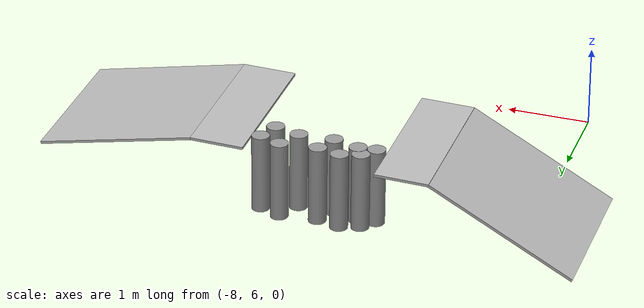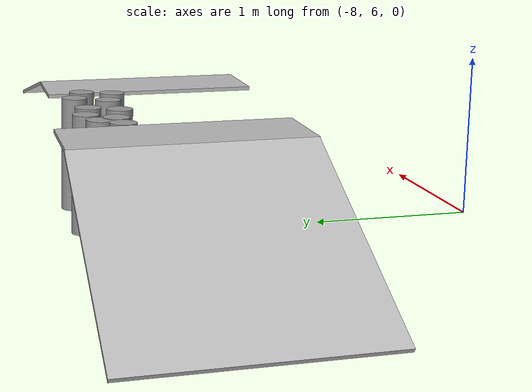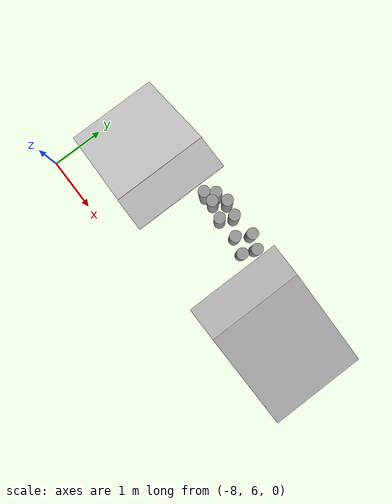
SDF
<sdf version="1.7">
 <world name="default">
  <model name="ramped_stepping_stone_clone_1_clone_clone_2">
   <static>1</static>
   <pose>-4.0201 7.30273 0.204894 0 -0.017033 0</pose>
   <link name="link">
    <collision name="collision"><geometry><box><size>0.666252 1.89779 0.033476</size></box></geometry></collision>
    <visual name="visual"><geometry><box><size>0.666252 1.89779 0.033476</size></box></geometry></visual>
   </link>
  </model>
  <model name="ramped_stepping_stone_clone_1_clone_clone_2_clone">
   <static>1</static>
   <pose>-6.3707 7.45436 0.234508 0 -0.017033 0</pose>
   <link name="link">
    <collision name="collision"><geometry><box><size>0.666252 1.89779 0.033476</size></box></geometry></collision>
    <visual name="visual"><geometry><box><size>0.666252 1.89779 0.033476</size></box></geometry></visual>
   </link>
  </model>
  <model name="ramped_stepping_stone_clone_3">
   <static>1</static>
   <pose>-2.71446 7.30395 0 0 0.212574 0</pose>
   <link name="link">
    <collision name="collision"><geometry><box><size>1.99786 1.89779 0.033476</size></box></geometry></collision>
    <visual name="visual"><geometry><box><size>1.99786 1.89779 0.033476</size></box></geometry></visual>
   </link>
  </model>
  <model name="round_step_clone">
   <link name="link">
    <inertial>
     <mass>0.0497635</mass>
     <inertia>
      <ixx>0.00430173</ixx>
      <ixy>0</ixy>
      <ixz>0</ixz>
      <iyy>0.00430173</iyy>
      <iyz>0</iyz>
      <izz>0.00030955</izz>
     </inertia>
    </inertial>
    <pose>0.001965 -0.009653 -0.499784 1.55252 -0 0</pose>
    <visual name="visual">
     <geometry><cylinder><radius>0.111539</radius><length>1</length></cylinder></geometry>
     <material>
      <script><name>Gazebo/Grey</name><uri>file://media/materials/scripts/gazebo.material</uri></script>
      <shader type="pixel"/>
     </material>
    </visual>
    <collision name="collision">
     <geometry><cylinder><radius>0.111539</radius><length>1</length></cylinder></geometry>
     <surface>
      <friction>
       <ode><mu>1</mu><mu2>1</mu2><fdir1>0 0 0</fdir1><slip1>0</slip1><slip2>0</slip2></ode>
       <torsional>
        <coefficient>1</coefficient>
        <patch_radius>0</patch_radius>
        <surface_radius>0</surface_radius>
        <use_patch_radius>1</use_patch_radius>
        <ode><slip>0</slip></ode>
       </torsional>
      </friction>
      <bounce><restitution_coefficient>0</restitution_coefficient><threshold>1e+06</threshold></bounce>
      <contact>
       <collide_without_contact>0</collide_without_contact>
       <collide_without_contact_bitmask>1</collide_without_contact_bitmask>
       <collide_bitmask>1</collide_bitmask>
       <ode>
        <soft_cfm>0</soft_cfm>
        <soft_erp>0.2</soft_erp>
        <kp>1e+13</kp>
        <kd>1</kd>
        <max_vel>0.01</max_vel>
        <min_depth>0</min_depth>
       </ode>
       <bullet>
        <split_impulse>1</split_impulse>
        <split_impulse_penetration_threshold>-0.01</split_impulse_penetration_threshold>
        <soft_cfm>0</soft_cfm>
        <soft_erp>0.2</soft_erp>
        <kp>1e+13</kp>
        <kd>1</kd>
       </bullet>
      </contact>
     </surface>
    </collision>
   </link>
   <static>1</static>
   <pose>-4.57955 7.21951 -0.259906 1.61465 -0 0</pose>
  </model>
  <model name="round_step_clone_clone">
   <link name="link">
    <inertial>
     <mass>0.0497635</mass>
     <inertia>
      <ixx>0.00430173</ixx>
      <ixy>0</ixy>
      <ixz>0</ixz>
      <iyy>0.00430173</iyy>
      <iyz>0</iyz>
      <izz>0.00030955</izz>
     </inertia>
    </inertial>
    <pose>0.001965 -0.009653 -0.499784 1.55252 -0 0</pose>
    <visual name="visual">
     <geometry><cylinder><radius>0.111539</radius><length>1</length></cylinder></geometry>
     <material>
      <script><name>Gazebo/Grey</name><uri>file://media/materials/scripts/gazebo.material</uri></script>
      <shader type="pixel"/>
     </material>
    </visual>
    <collision name="collision">
     <geometry><cylinder><radius>0.111539</radius><length>1</length></cylinder></geometry>
     <surface>
      <friction>
       <ode><mu>1</mu><mu2>1</mu2><fdir1>0 0 0</fdir1><slip1>0</slip1><slip2>0</slip2></ode>
       <torsional>
        <coefficient>1</coefficient>
        <patch_radius>0</patch_radius>
        <surface_radius>0</surface_radius>
        <use_patch_radius>1</use_patch_radius>
        <ode><slip>0</slip></ode>
       </torsional>
      </friction>
      <bounce><restitution_coefficient>0</restitution_coefficient><threshold>1e+06</threshold></bounce>
      <contact>
       <collide_without_contact>0</collide_without_contact>
       <collide_without_contact_bitmask>1</collide_without_contact_bitmask>
       <collide_bitmask>1</collide_bitmask>
       <ode>
        <soft_cfm>0</soft_cfm>
        <soft_erp>0.2</soft_erp>
        <kp>1e+13</kp>
        <kd>1</kd>
        <max_vel>0.01</max_vel>
        <min_depth>0</min_depth>
       </ode>
       <bullet>
        <split_impulse>1</split_impulse>
        <split_impulse_penetration_threshold>-0.01</split_impulse_penetration_threshold>
        <soft_cfm>0</soft_cfm>
        <soft_erp>0.2</soft_erp>
        <kp>1e+13</kp>
        <kd>1</kd>
       </bullet>
      </contact>
     </surface>
    </collision>
   </link>
   <static>1</static>
   <pose>-4.75434 7.58258 -0.259907 1.61465 -0 0</pose>
  </model>
  <model name="round_step_clone_clone_0">
   <link name="link">
    <inertial>
     <mass>0.0497635</mass>
     <inertia>
      <ixx>0.00430173</ixx>
      <ixy>0</ixy>
      <ixz>0</ixz>
      <iyy>0.00430173</iyy>
      <iyz>0</iyz>
      <izz>0.00030955</izz>
     </inertia>
    </inertial>
    <pose>0.001965 -0.009653 -0.499784 1.55252 -0 0</pose>
    <visual name="visual">
     <geometry><cylinder><radius>0.111539</radius><length>1</length></cylinder></geometry>
     <material>
      <script><name>Gazebo/Grey</name><uri>file://media/materials/scripts/gazebo.material</uri></script>
      <shader type="pixel"/>
     </material>
    </visual>
    <collision name="collision">
     <geometry><cylinder><radius>0.111539</radius><length>1</length></cylinder></geometry>
     <surface>
      <friction>
       <ode><mu>1</mu><mu2>1</mu2><fdir1>0 0 0</fdir1><slip1>0</slip1><slip2>0</slip2></ode>
       <torsional>
        <coefficient>1</coefficient>
        <patch_radius>0</patch_radius>
        <surface_radius>0</surface_radius>
        <use_patch_radius>1</use_patch_radius>
        <ode><slip>0</slip></ode>
       </torsional>
      </friction>
      <bounce><restitution_coefficient>0</restitution_coefficient><threshold>1e+06</threshold></bounce>
      <contact>
       <collide_without_contact>0</collide_without_contact>
       <collide_without_contact_bitmask>1</collide_without_contact_bitmask>
       <collide_bitmask>1</collide_bitmask>
       <ode>
        <soft_cfm>0</soft_cfm>
        <soft_erp>0.2</soft_erp>
        <kp>1e+13</kp>
        <kd>1</kd>
        <max_vel>0.01</max_vel>
        <min_depth>0</min_depth>
       </ode>
       <bullet>
        <split_impulse>1</split_impulse>
        <split_impulse_penetration_threshold>-0.01</split_impulse_penetration_threshold>
        <soft_cfm>0</soft_cfm>
        <soft_erp>0.2</soft_erp>
        <kp>1e+13</kp>
        <kd>1</kd>
       </bullet>
      </contact>
     </surface>
    </collision>
   </link>
   <static>1</static>
   <pose>-4.90346 7.30763 -0.259907 1.61465 -0 0</pose>
  </model>
  <model name="round_step_clone_clone_3">
   <link name="link">
    <inertial>
     <mass>0.0497635</mass>
     <inertia>
      <ixx>0.00430173</ixx>
      <ixy>0</ixy>
      <ixz>0</ixz>
      <iyy>0.00430173</iyy>
      <iyz>0</iyz>
      <izz>0.00030955</izz>
     </inertia>
    </inertial>
    <pose>0.001965 -0.009653 -0.499784 1.55252 -0 0</pose>
    <visual name="visual">
     <geometry><cylinder><radius>0.111539</radius><length>1</length></cylinder></geometry>
     <material>
      <script><name>Gazebo/Grey</name><uri>file://media/materials/scripts/gazebo.material</uri></script>
      <shader type="pixel"/>
     </material>
    </visual>
    <collision name="collision">
     <geometry><cylinder><radius>0.111539</radius><length>1</length></cylinder></geometry>
     <surface>
      <friction>
       <ode><mu>1</mu><mu2>1</mu2><fdir1>0 0 0</fdir1><slip1>0</slip1><slip2>0</slip2></ode>
       <torsional>
        <coefficient>1</coefficient>
        <patch_radius>0</patch_radius>
        <surface_radius>0</surface_radius>
        <use_patch_radius>1</use_patch_radius>
        <ode><slip>0</slip></ode>
       </torsional>
      </friction>
      <bounce><restitution_coefficient>0</restitution_coefficient><threshold>1e+06</threshold></bounce>
      <contact>
       <collide_without_contact>0</collide_without_contact>
       <collide_without_contact_bitmask>1</collide_without_contact_bitmask>
       <collide_bitmask>1</collide_bitmask>
       <ode>
        <soft_cfm>0</soft_cfm>
        <soft_erp>0.2</soft_erp>
        <kp>1e+13</kp>
        <kd>1</kd>
        <max_vel>0.01</max_vel>
        <min_depth>0</min_depth>
       </ode>
       <bullet>
        <split_impulse>1</split_impulse>
        <split_impulse_penetration_threshold>-0.01</split_impulse_penetration_threshold>
        <soft_cfm>0</soft_cfm>
        <soft_erp>0.2</soft_erp>
        <kp>1e+13</kp>
        <kd>1</kd>
       </bullet>
      </contact>
     </surface>
    </collision>
   </link>
   <static>1</static>
   <pose>-5.21817 7.53102 -0.259907 1.61465 -0 0</pose>
  </model>
  <model name="round_step_clone_clone_4">
   <link name="link">
    <inertial>
     <mass>0.0497635</mass>
     <inertia>
      <ixx>0.00430173</ixx>
      <ixy>0</ixy>
      <ixz>0</ixz>
      <iyy>0.00430173</iyy>
      <iyz>0</iyz>
      <izz>0.00030955</izz>
     </inertia>
    </inertial>
    <pose>0.001965 -0.009653 -0.499784 1.55252 -0 0</pose>
    <visual name="visual">
     <geometry><cylinder><radius>0.111539</radius><length>1</length></cylinder></geometry>
     <material>
      <script><name>Gazebo/Grey</name><uri>file://media/materials/scripts/gazebo.material</uri></script>
      <shader type="pixel"/>
     </material>
    </visual>
    <collision name="collision">
     <geometry><cylinder><radius>0.111539</radius><length>1</length></cylinder></geometry>
     <surface>
      <friction>
       <ode><mu>1</mu><mu2>1</mu2><fdir1>0 0 0</fdir1><slip1>0</slip1><slip2>0</slip2></ode>
       <torsional>
        <coefficient>1</coefficient>
        <patch_radius>0</patch_radius>
        <surface_radius>0</surface_radius>
        <use_patch_radius>1</use_patch_radius>
        <ode><slip>0</slip></ode>
       </torsional>
      </friction>
      <bounce><restitution_coefficient>0</restitution_coefficient><threshold>1e+06</threshold></bounce>
      <contact>
       <collide_without_contact>0</collide_without_contact>
       <collide_without_contact_bitmask>1</collide_without_contact_bitmask>
       <collide_bitmask>1</collide_bitmask>
       <ode>
        <soft_cfm>0</soft_cfm>
        <soft_erp>0.2</soft_erp>
        <kp>1e+13</kp>
        <kd>1</kd>
        <max_vel>0.01</max_vel>
        <min_depth>0</min_depth>
       </ode>
       <bullet>
        <split_impulse>1</split_impulse>
        <split_impulse_penetration_threshold>-0.01</split_impulse_penetration_threshold>
        <soft_cfm>0</soft_cfm>
        <soft_erp>0.2</soft_erp>
        <kp>1e+13</kp>
        <kd>1</kd>
       </bullet>
      </contact>
     </surface>
    </collision>
   </link>
   <static>1</static>
   <pose>-5.33829 7.28402 -0.259907 1.61465 -0 0</pose>
  </model>
  <model name="round_step_clone_clone_8">
   <link name="link">
    <inertial>
     <mass>0.0497635</mass>
     <inertia>
      <ixx>0.00430173</ixx>
      <ixy>0</ixy>
      <ixz>0</ixz>
      <iyy>0.00430173</iyy>
      <iyz>0</iyz>
      <izz>0.00030955</izz>
     </inertia>
    </inertial>
    <pose>0.001965 -0.009653 -0.499784 1.55252 -0 0</pose>
    <visual name="visual">
     <geometry><cylinder><radius>0.111539</radius><length>1</length></cylinder></geometry>
     <material>
      <script><name>Gazebo/Grey</name><uri>file://media/materials/scripts/gazebo.material</uri></script>
      <shader type="pixel"/>
     </material>
    </visual>
    <collision name="collision">
     <geometry><cylinder><radius>0.111539</radius><length>1</length></cylinder></geometry>
     <surface>
      <friction>
       <ode><mu>1</mu><mu2>1</mu2><fdir1>0 0 0</fdir1><slip1>0</slip1><slip2>0</slip2></ode>
       <torsional>
        <coefficient>1</coefficient>
        <patch_radius>0</patch_radius>
        <surface_radius>0</surface_radius>
        <use_patch_radius>1</use_patch_radius>
        <ode><slip>0</slip></ode>
       </torsional>
      </friction>
      <bounce><restitution_coefficient>0</restitution_coefficient><threshold>1e+06</threshold></bounce>
      <contact>
       <collide_without_contact>0</collide_without_contact>
       <collide_without_contact_bitmask>1</collide_without_contact_bitmask>
       <collide_bitmask>1</collide_bitmask>
       <ode>
        <soft_cfm>0</soft_cfm>
        <soft_erp>0.2</soft_erp>
        <kp>1e+13</kp>
        <kd>1</kd>
        <max_vel>0.01</max_vel>
        <min_depth>0</min_depth>
       </ode>
       <bullet>
        <split_impulse>1</split_impulse>
        <split_impulse_penetration_threshold>-0.01</split_impulse_penetration_threshold>
        <soft_cfm>0</soft_cfm>
        <soft_erp>0.2</soft_erp>
        <kp>1e+13</kp>
        <kd>1</kd>
       </bullet>
      </contact>
     </surface>
    </collision>
   </link>
   <static>1</static>
   <pose>-5.66805 7.36995 -0.259907 1.61465 -0 0</pose>
  </model>
  <model name="round_step_clone_clone_9">
   <link name="link">
    <inertial>
     <mass>0.0497635</mass>
     <inertia>
      <ixx>0.00430173</ixx>
      <ixy>0</ixy>
      <ixz>0</ixz>
      <iyy>0.00430173</iyy>
      <iyz>0</iyz>
      <izz>0.00030955</izz>
     </inertia>
    </inertial>
    <pose>0.001965 -0.009653 -0.499784 1.55252 -0 0</pose>
    <visual name="visual">
     <geometry><cylinder><radius>0.111539</radius><length>1</length></cylinder></geometry>
     <material>
      <script><name>Gazebo/Grey</name><uri>file://media/materials/scripts/gazebo.material</uri></script>
      <shader type="pixel"/>
     </material>
    </visual>
    <collision name="collision">
     <geometry><cylinder><radius>0.111539</radius><length>1</length></cylinder></geometry>
     <surface>
      <friction>
       <ode><mu>1</mu><mu2>1</mu2><fdir1>0 0 0</fdir1><slip1>0</slip1><slip2>0</slip2></ode>
       <torsional>
        <coefficient>1</coefficient>
        <patch_radius>0</patch_radius>
        <surface_radius>0</surface_radius>
        <use_patch_radius>1</use_patch_radius>
        <ode><slip>0</slip></ode>
       </torsional>
      </friction>
      <bounce><restitution_coefficient>0</restitution_coefficient><threshold>1e+06</threshold></bounce>
      <contact>
       <collide_without_contact>0</collide_without_contact>
       <collide_without_contact_bitmask>1</collide_without_contact_bitmask>
       <collide_bitmask>1</collide_bitmask>
       <ode>
        <soft_cfm>0</soft_cfm>
        <soft_erp>0.2</soft_erp>
        <kp>1e+13</kp>
        <kd>1</kd>
        <max_vel>0.01</max_vel>
        <min_depth>0</min_depth>
       </ode>
       <bullet>
        <split_impulse>1</split_impulse>
        <split_impulse_penetration_threshold>-0.01</split_impulse_penetration_threshold>
        <soft_cfm>0</soft_cfm>
        <soft_erp>0.2</soft_erp>
        <kp>1e+13</kp>
        <kd>1</kd>
       </bullet>
      </contact>
     </surface>
    </collision>
   </link>
   <static>1</static>
   <pose>-5.50936 7.59353 -0.259907 1.61465 -0 0</pose>
  </model>
  <model name="round_step_clone_clone_14">
   <link name="link">
    <inertial>
     <mass>0.0497635</mass>
     <inertia>
      <ixx>0.00430173</ixx>
      <ixy>0</ixy>
      <ixz>0</ixz>
      <iyy>0.00430173</iyy>
      <iyz>0</iyz>
      <izz>0.00030955</izz>
     </inertia>
    </inertial>
    <pose>0.001965 -0.009653 -0.499784 1.55252 -0 0</pose>
    <visual name="visual">
     <geometry><cylinder><radius>0.111539</radius><length>1</length></cylinder></geometry>
     <material>
      <script><name>Gazebo/Grey</name><uri>file://media/materials/scripts/gazebo.material</uri></script>
      <shader type="pixel"/>
     </material>
    </visual>
    <collision name="collision">
     <geometry><cylinder><radius>0.111539</radius><length>1</length></cylinder></geometry>
     <surface>
      <friction>
       <ode><mu>1</mu><mu2>1</mu2><fdir1>0 0 0</fdir1><slip1>0</slip1><slip2>0</slip2></ode>
       <torsional>
        <coefficient>1</coefficient>
        <patch_radius>0</patch_radius>
        <surface_radius>0</surface_radius>
        <use_patch_radius>1</use_patch_radius>
        <ode><slip>0</slip></ode>
       </torsional>
      </friction>
      <bounce><restitution_coefficient>0</restitution_coefficient><threshold>1e+06</threshold></bounce>
      <contact>
       <collide_without_contact>0</collide_without_contact>
       <collide_without_contact_bitmask>1</collide_without_contact_bitmask>
       <collide_bitmask>1</collide_bitmask>
       <ode>
        <soft_cfm>0</soft_cfm>
        <soft_erp>0.2</soft_erp>
        <kp>1e+13</kp>
        <kd>1</kd>
        <max_vel>0.01</max_vel>
        <min_depth>0</min_depth>
       </ode>
       <bullet>
        <split_impulse>1</split_impulse>
        <split_impulse_penetration_threshold>-0.01</split_impulse_penetration_threshold>
        <soft_cfm>0</soft_cfm>
        <soft_erp>0.2</soft_erp>
        <kp>1e+13</kp>
        <kd>1</kd>
       </bullet>
      </contact>
     </surface>
    </collision>
   </link>
   <static>1</static>
   <pose>-5.75052 7.51593 -0.259907 1.61465 -0 0</pose>
  </model>
  <model name="round_step_clone_clone_15">
   <link name="link">
    <inertial>
     <mass>0.0497635</mass>
     <inertia>
      <ixx>0.00430173</ixx>
      <ixy>0</ixy>
      <ixz>0</ixz>
      <iyy>0.00430173</iyy>
      <iyz>0</iyz>
      <izz>0.00030955</izz>
     </inertia>
    </inertial>
    <pose>0.001965 -0.009653 -0.499784 1.55252 -0 0</pose>
    <visual name="visual">
     <geometry><cylinder><radius>0.111539</radius><length>1</length></cylinder></geometry>
     <material>
      <script><name>Gazebo/Grey</name><uri>file://media/materials/scripts/gazebo.material</uri></script>
      <shader type="pixel"/>
     </material>
    </visual>
    <collision name="collision">
     <geometry><cylinder><radius>0.111539</radius><length>1</length></cylinder></geometry>
     <surface>
      <friction>
       <ode><mu>1</mu><mu2>1</mu2><fdir1>0 0 0</fdir1><slip1>0</slip1><slip2>0</slip2></ode>
       <torsional>
        <coefficient>1</coefficient>
        <patch_radius>0</patch_radius>
        <surface_radius>0</surface_radius>
        <use_patch_radius>1</use_patch_radius>
        <ode><slip>0</slip></ode>
       </torsional>
      </friction>
      <bounce><restitution_coefficient>0</restitution_coefficient><threshold>1e+06</threshold></bounce>
      <contact>
       <collide_without_contact>0</collide_without_contact>
       <collide_without_contact_bitmask>1</collide_without_contact_bitmask>
       <collide_bitmask>1</collide_bitmask>
       <ode>
        <soft_cfm>0</soft_cfm>
        <soft_erp>0.2</soft_erp>
        <kp>1e+13</kp>
        <kd>1</kd>
        <max_vel>0.01</max_vel>
        <min_depth>0</min_depth>
       </ode>
       <bullet>
        <split_impulse>1</split_impulse>
        <split_impulse_penetration_threshold>-0.01</split_impulse_penetration_threshold>
        <soft_cfm>0</soft_cfm>
        <soft_erp>0.2</soft_erp>
        <kp>1e+13</kp>
        <kd>1</kd>
       </bullet>
      </contact>
     </surface>
    </collision>
   </link>
   <static>1</static>
   <pose>-5.89475 7.35287 -0.259907 1.61465 -0 0</pose>
  </model>
  <model name="ramped_stepping_stone_clone_3_clone">
   <static>1</static>
   <pose>-7.58094 7.46128 -0.240054 0 -0.492052 0</pose>
   <link name="link">
    <collision name="collision"><geometry><box><size>1.99786 1.89779 0.033476</size></box></geometry></collision>
    <visual name="visual"><geometry><box><size>1.99786 1.89779 0.033476</size></box></geometry></visual>
   </link>
  </model>
  <model name="round_step_clone_clone_1_clone_1">
   <link name="link">
    <inertial>
     <mass>0.0497635</mass>
     <inertia>
      <ixx>0.00430173</ixx>
      <ixy>0</ixy>
      <ixz>0</ixz>
      <iyy>0.00430173</iyy>
      <iyz>0</iyz>
      <izz>0.00030955</izz>
     </inertia>
    </inertial>
    <pose>0.001965 -0.009653 -0.499784 1.55252 -0 0</pose>
    <visual name="visual">
     <geometry><cylinder><radius>0.111539</radius><length>1</length></cylinder></geometry>
     <material>
      <script><name>Gazebo/Grey</name><uri>file://media/materials/scripts/gazebo.material</uri></script>
      <shader type="pixel"/>
     </material>
    </visual>
    <collision name="collision">
     <geometry><cylinder><radius>0.111539</radius><length>1</length></cylinder></geometry>
     <surface>
      <friction>
       <ode><mu>1</mu><mu2>1</mu2><fdir1>0 0 0</fdir1><slip1>0</slip1><slip2>0</slip2></ode>
       <torsional>
        <coefficient>1</coefficient>
        <patch_radius>0</patch_radius>
        <surface_radius>0</surface_radius>
        <use_patch_radius>1</use_patch_radius>
        <ode><slip>0</slip></ode>
       </torsional>
      </friction>
      <bounce><restitution_coefficient>0</restitution_coefficient><threshold>1e+06</threshold></bounce>
      <contact>
       <collide_without_contact>0</collide_without_contact>
       <collide_without_contact_bitmask>1</collide_without_contact_bitmask>
       <collide_bitmask>1</collide_bitmask>
       <ode>
        <soft_cfm>0</soft_cfm>
        <soft_erp>0.2</soft_erp>
        <kp>1e+13</kp>
        <kd>1</kd>
        <max_vel>0.01</max_vel>
        <min_depth>0</min_depth>
       </ode>
       <bullet>
        <split_impulse>1</split_impulse>
        <split_impulse_penetration_threshold>-0.01</split_impulse_penetration_threshold>
        <soft_cfm>0</soft_cfm>
        <soft_erp>0.2</soft_erp>
        <kp>1e+13</kp>
        <kd>1</kd>
       </bullet>
      </contact>
     </surface>
    </collision>
   </link>
   <static>1</static>
   <pose>-4.48217 7.47947 -0.259907 1.61465 -0 0</pose>
  </model>
 </world>
</sdf>
